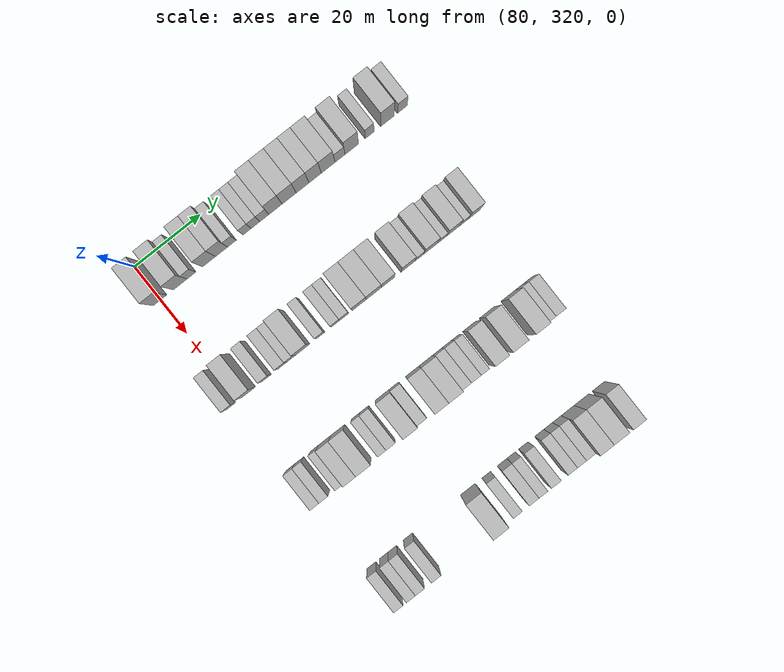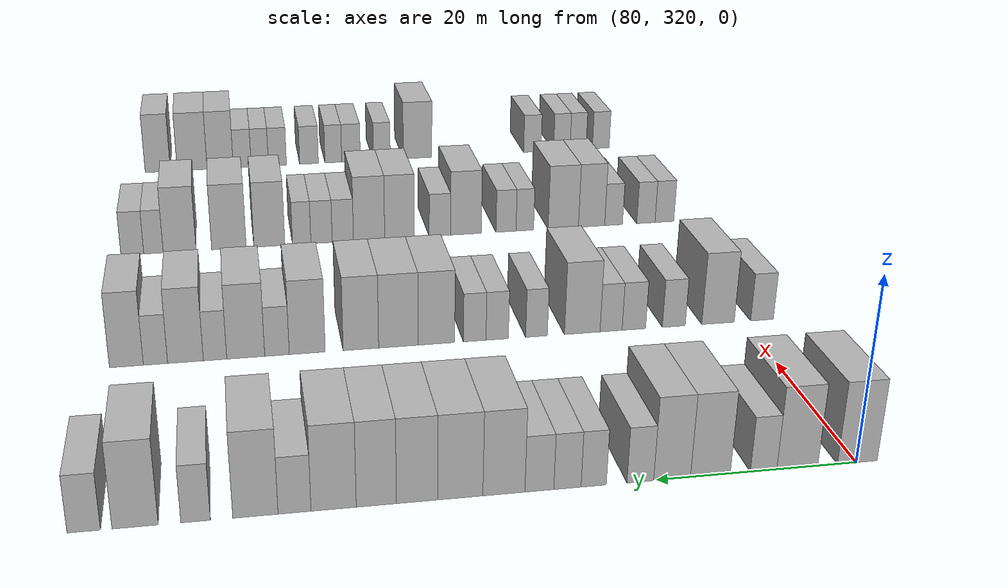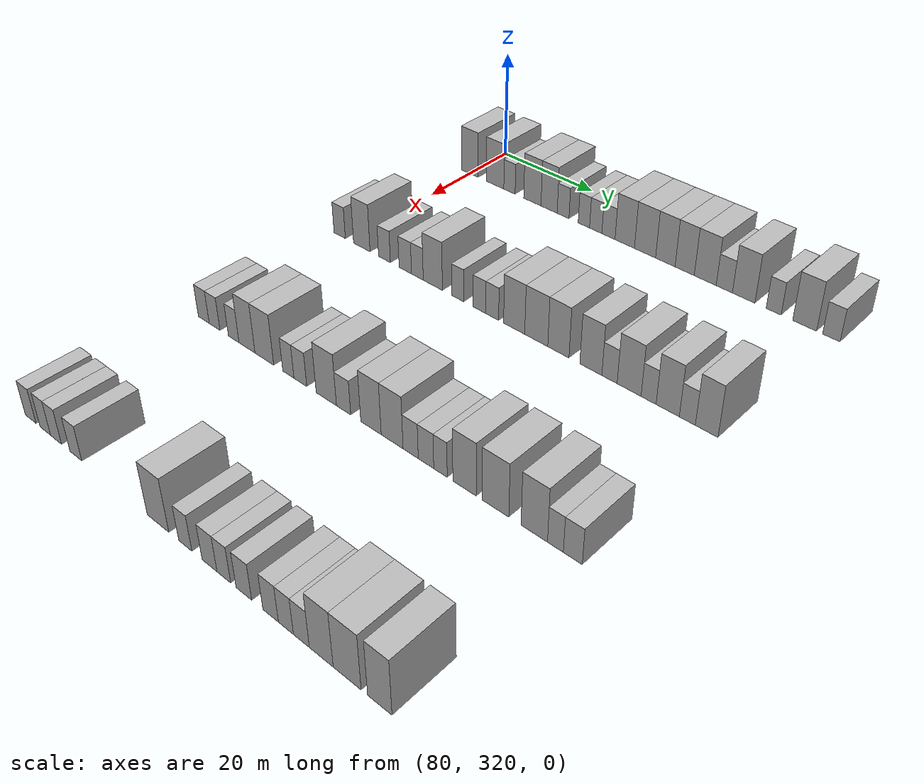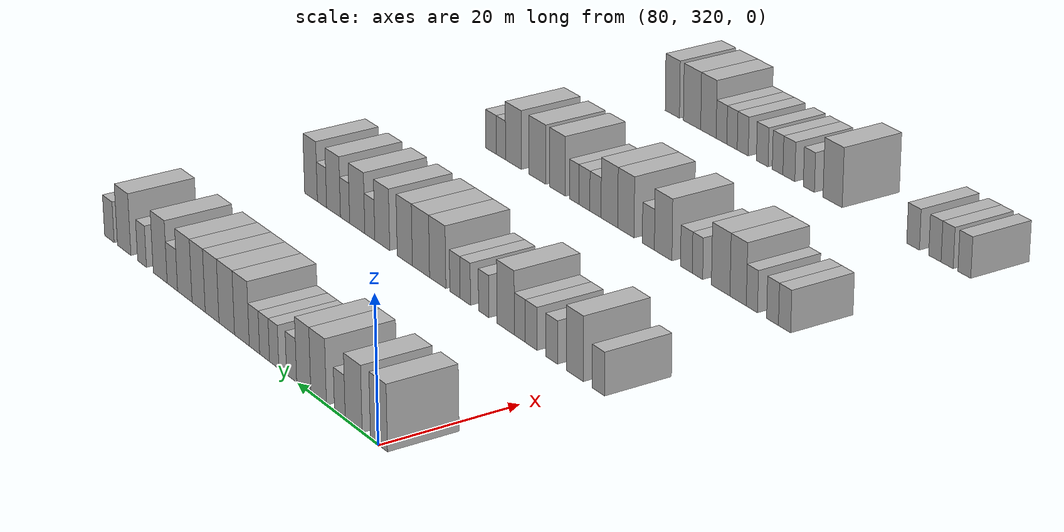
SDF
<sdf version="1.6">
 <world name="default">
  <model name="building_643">
   <static>1</static>
   <pose>85.0000 319.9103 0 0.000000 0.000000 0.000000</pose>
   <link name="link">
    <pose>0 0 4.50 0 0 0</pose>
    <collision name="collision"><geometry><box><size>10.0000 4.0431 9.0000</size></box></geometry></collision>
    <visual name="visual">
     <cast_shadows>0</cast_shadows>
     <geometry><box><size>10.0000 4.0431 9.0000</size></box></geometry>
     <material>
      <script>
       <uri>model://HANNAS_wall/materials/scripts</uri>
       <uri>model://HANNAS_wall/materials/textures</uri>
       <name>vrc/HANNAS_wall</name>
      </script>
     </material>
    </visual>
   </link>
  </model>
  <model name="building_644">
   <static>1</static>
   <pose>85.0000 325.9961 0 0.000000 0.000000 0.000000</pose>
   <link name="link">
    <pose>0 0 4.50 0 0 0</pose>
    <collision name="collision"><geometry><box><size>10.0000 4.1285 9.0000</size></box></geometry></collision>
    <visual name="visual">
     <cast_shadows>0</cast_shadows>
     <geometry><box><size>10.0000 4.1285 9.0000</size></box></geometry>
     <material>
      <script>
       <uri>model://HANNAS_wall/materials/scripts</uri>
       <uri>model://HANNAS_wall/materials/textures</uri>
       <name>vrc/HANNAS_wall</name>
      </script>
     </material>
    </visual>
   </link>
  </model>
  <model name="building_645">
   <static>1</static>
   <pose>85.0000 329.3809 0 0.000000 0.000000 0.000000</pose>
   <link name="link">
    <pose>0 0 3.00 0 0 0</pose>
    <collision name="collision"><geometry><box><size>10.0000 2.6412 6.0000</size></box></geometry></collision>
    <visual name="visual">
     <cast_shadows>0</cast_shadows>
     <geometry><box><size>10.0000 2.6412 6.0000</size></box></geometry>
     <material>
      <script>
       <uri>model://HANNAS_wall/materials/scripts</uri>
       <uri>model://HANNAS_wall/materials/textures</uri>
       <name>vrc/HANNAS_wall</name>
      </script>
     </material>
    </visual>
   </link>
  </model>
  <model name="building_646">
   <static>1</static>
   <pose>85.0000 334.6647 0 0.000000 0.000000 0.000000</pose>
   <link name="link">
    <pose>0 0 4.50 0 0 0</pose>
    <collision name="collision"><geometry><box><size>10.0000 3.9263 9.0000</size></box></geometry></collision>
    <visual name="visual">
     <cast_shadows>0</cast_shadows>
     <geometry><box><size>10.0000 3.9263 9.0000</size></box></geometry>
     <material>
      <script>
       <uri>model://HANNAS_wall/materials/scripts</uri>
       <uri>model://HANNAS_wall/materials/textures</uri>
       <name>vrc/HANNAS_wall</name>
      </script>
     </material>
    </visual>
   </link>
  </model>
  <model name="building_647">
   <static>1</static>
   <pose>85.0000 338.4344 0 0.000000 0.000000 0.000000</pose>
   <link name="link">
    <pose>0 0 4.50 0 0 0</pose>
    <collision name="collision"><geometry><box><size>10.0000 3.6131 9.0000</size></box></geometry></collision>
    <visual name="visual">
     <cast_shadows>0</cast_shadows>
     <geometry><box><size>10.0000 3.6131 9.0000</size></box></geometry>
     <material>
      <script>
       <uri>model://HANNAS_wall/materials/scripts</uri>
       <uri>model://HANNAS_wall/materials/textures</uri>
       <name>vrc/HANNAS_wall</name>
      </script>
     </material>
    </visual>
   </link>
  </model>
  <model name="building_648">
   <static>1</static>
   <pose>85.0000 341.5403 0 0.000000 0.000000 0.000000</pose>
   <link name="link">
    <pose>0 0 3.00 0 0 0</pose>
    <collision name="collision"><geometry><box><size>10.0000 2.5987 6.0000</size></box></geometry></collision>
    <visual name="visual">
     <cast_shadows>0</cast_shadows>
     <geometry><box><size>10.0000 2.5987 6.0000</size></box></geometry>
     <material>
      <script>
       <uri>model://HANNAS_wall/materials/scripts</uri>
       <uri>model://HANNAS_wall/materials/textures</uri>
       <name>vrc/HANNAS_wall</name>
      </script>
     </material>
    </visual>
   </link>
  </model>
  <model name="building_649">
   <static>1</static>
   <pose>85.0000 346.0572 0 0.000000 0.000000 0.000000</pose>
   <link name="link">
    <pose>0 0 3.00 0 0 0</pose>
    <collision name="collision"><geometry><box><size>10.0000 2.4350 6.0000</size></box></geometry></collision>
    <visual name="visual">
     <cast_shadows>0</cast_shadows>
     <geometry><box><size>10.0000 2.4350 6.0000</size></box></geometry>
     <material>
      <script>
       <uri>model://HANNAS_wall/materials/scripts</uri>
       <uri>model://HANNAS_wall/materials/textures</uri>
       <name>vrc/HANNAS_wall</name>
      </script>
     </material>
    </visual>
   </link>
  </model>
  <model name="building_650">
   <static>1</static>
   <pose>85.0000 348.5784 0 0.000000 0.000000 0.000000</pose>
   <link name="link">
    <pose>0 0 3.00 0 0 0</pose>
    <collision name="collision"><geometry><box><size>10.0000 2.6075 6.0000</size></box></geometry></collision>
    <visual name="visual">
     <cast_shadows>0</cast_shadows>
     <geometry><box><size>10.0000 2.6075 6.0000</size></box></geometry>
     <material>
      <script>
       <uri>model://HANNAS_wall/materials/scripts</uri>
       <uri>model://HANNAS_wall/materials/textures</uri>
       <name>vrc/HANNAS_wall</name>
      </script>
     </material>
    </visual>
   </link>
  </model>
  <model name="building_651">
   <static>1</static>
   <pose>85.0000 351.2582 0 0.000000 0.000000 0.000000</pose>
   <link name="link">
    <pose>0 0 3.00 0 0 0</pose>
    <collision name="collision"><geometry><box><size>10.0000 2.7520 6.0000</size></box></geometry></collision>
    <visual name="visual">
     <cast_shadows>0</cast_shadows>
     <geometry><box><size>10.0000 2.7520 6.0000</size></box></geometry>
     <material>
      <script>
       <uri>model://HANNAS_wall/materials/scripts</uri>
       <uri>model://HANNAS_wall/materials/textures</uri>
       <name>vrc/HANNAS_wall</name>
      </script>
     </material>
    </visual>
   </link>
  </model>
  <model name="building_652">
   <static>1</static>
   <pose>85.0000 354.6231 0 0.000000 0.000000 0.000000</pose>
   <link name="link">
    <pose>0 0 4.50 0 0 0</pose>
    <collision name="collision"><geometry><box><size>10.0000 3.9779 9.0000</size></box></geometry></collision>
    <visual name="visual">
     <cast_shadows>0</cast_shadows>
     <geometry><box><size>10.0000 3.9779 9.0000</size></box></geometry>
     <material>
      <script>
       <uri>model://HANNAS_wall/materials/scripts</uri>
       <uri>model://HANNAS_wall/materials/textures</uri>
       <name>vrc/HANNAS_wall</name>
      </script>
     </material>
    </visual>
   </link>
  </model>
  <model name="building_653">
   <static>1</static>
   <pose>85.0000 358.7332 0 0.000000 0.000000 0.000000</pose>
   <link name="link">
    <pose>0 0 4.50 0 0 0</pose>
    <collision name="collision"><geometry><box><size>10.0000 4.2423 9.0000</size></box></geometry></collision>
    <visual name="visual">
     <cast_shadows>0</cast_shadows>
     <geometry><box><size>10.0000 4.2423 9.0000</size></box></geometry>
     <material>
      <script>
       <uri>model://HANNAS_wall/materials/scripts</uri>
       <uri>model://HANNAS_wall/materials/textures</uri>
       <name>vrc/HANNAS_wall</name>
      </script>
     </material>
    </visual>
   </link>
  </model>
  <model name="building_654">
   <static>1</static>
   <pose>85.0000 362.7655 0 0.000000 0.000000 0.000000</pose>
   <link name="link">
    <pose>0 0 4.50 0 0 0</pose>
    <collision name="collision"><geometry><box><size>10.0000 3.8223 9.0000</size></box></geometry></collision>
    <visual name="visual">
     <cast_shadows>0</cast_shadows>
     <geometry><box><size>10.0000 3.8223 9.0000</size></box></geometry>
     <material>
      <script>
       <uri>model://HANNAS_wall/materials/scripts</uri>
       <uri>model://HANNAS_wall/materials/textures</uri>
       <name>vrc/HANNAS_wall</name>
      </script>
     </material>
    </visual>
   </link>
  </model>
  <model name="building_655">
   <static>1</static>
   <pose>85.0000 366.5242 0 0.000000 0.000000 0.000000</pose>
   <link name="link">
    <pose>0 0 4.50 0 0 0</pose>
    <collision name="collision"><geometry><box><size>10.0000 3.6950 9.0000</size></box></geometry></collision>
    <visual name="visual">
     <cast_shadows>0</cast_shadows>
     <geometry><box><size>10.0000 3.6950 9.0000</size></box></geometry>
     <material>
      <script>
       <uri>model://HANNAS_wall/materials/scripts</uri>
       <uri>model://HANNAS_wall/materials/textures</uri>
       <name>vrc/HANNAS_wall</name>
      </script>
     </material>
    </visual>
   </link>
  </model>
  <model name="building_656">
   <static>1</static>
   <pose>85.0000 370.4353 0 0.000000 0.000000 0.000000</pose>
   <link name="link">
    <pose>0 0 4.50 0 0 0</pose>
    <collision name="collision"><geometry><box><size>10.0000 4.1272 9.0000</size></box></geometry></collision>
    <visual name="visual">
     <cast_shadows>0</cast_shadows>
     <geometry><box><size>10.0000 4.1272 9.0000</size></box></geometry>
     <material>
      <script>
       <uri>model://HANNAS_wall/materials/scripts</uri>
       <uri>model://HANNAS_wall/materials/textures</uri>
       <name>vrc/HANNAS_wall</name>
      </script>
     </material>
    </visual>
   </link>
  </model>
  <model name="building_657">
   <static>1</static>
   <pose>85.0000 373.9904 0 0.000000 0.000000 0.000000</pose>
   <link name="link">
    <pose>0 0 3.00 0 0 0</pose>
    <collision name="collision"><geometry><box><size>10.0000 2.9829 6.0000</size></box></geometry></collision>
    <visual name="visual">
     <cast_shadows>0</cast_shadows>
     <geometry><box><size>10.0000 2.9829 6.0000</size></box></geometry>
     <material>
      <script>
       <uri>model://HANNAS_wall/materials/scripts</uri>
       <uri>model://HANNAS_wall/materials/textures</uri>
       <name>vrc/HANNAS_wall</name>
      </script>
     </material>
    </visual>
   </link>
  </model>
  <model name="building_658">
   <static>1</static>
   <pose>85.0000 377.5121 0 0.000000 0.000000 0.000000</pose>
   <link name="link">
    <pose>0 0 4.50 0 0 0</pose>
    <collision name="collision"><geometry><box><size>10.0000 4.0607 9.0000</size></box></geometry></collision>
    <visual name="visual">
     <cast_shadows>0</cast_shadows>
     <geometry><box><size>10.0000 4.0607 9.0000</size></box></geometry>
     <material>
      <script>
       <uri>model://HANNAS_wall/materials/scripts</uri>
       <uri>model://HANNAS_wall/materials/textures</uri>
       <name>vrc/HANNAS_wall</name>
      </script>
     </material>
    </visual>
   </link>
  </model>
  <model name="building_659">
   <static>1</static>
   <pose>85.0000 382.8527 0 0.000000 0.000000 0.000000</pose>
   <link name="link">
    <pose>0 0 3.00 0 0 0</pose>
    <collision name="collision"><geometry><box><size>10.0000 2.6204 6.0000</size></box></geometry></collision>
    <visual name="visual">
     <cast_shadows>0</cast_shadows>
     <geometry><box><size>10.0000 2.6204 6.0000</size></box></geometry>
     <material>
      <script>
       <uri>model://HANNAS_wall/materials/scripts</uri>
       <uri>model://HANNAS_wall/materials/textures</uri>
       <name>vrc/HANNAS_wall</name>
      </script>
     </material>
    </visual>
   </link>
  </model>
  <model name="building_660">
   <static>1</static>
   <pose>85.0000 388.1898 0 0.000000 0.000000 0.000000</pose>
   <link name="link">
    <pose>0 0 4.50 0 0 0</pose>
    <collision name="collision"><geometry><box><size>10.0000 4.0538 9.0000</size></box></geometry></collision>
    <visual name="visual">
     <cast_shadows>0</cast_shadows>
     <geometry><box><size>10.0000 4.0538 9.0000</size></box></geometry>
     <material>
      <script>
       <uri>model://HANNAS_wall/materials/scripts</uri>
       <uri>model://HANNAS_wall/materials/textures</uri>
       <name>vrc/HANNAS_wall</name>
      </script>
     </material>
    </visual>
   </link>
  </model>
  <model name="building_661">
   <static>1</static>
   <pose>85.0000 392.6674 0 0.000000 0.000000 0.000000</pose>
   <link name="link">
    <pose>0 0 3.00 0 0 0</pose>
    <collision name="collision"><geometry><box><size>10.0000 2.9014 6.0000</size></box></geometry></collision>
    <visual name="visual">
     <cast_shadows>0</cast_shadows>
     <geometry><box><size>10.0000 2.9014 6.0000</size></box></geometry>
     <material>
      <script>
       <uri>model://HANNAS_wall/materials/scripts</uri>
       <uri>model://HANNAS_wall/materials/textures</uri>
       <name>vrc/HANNAS_wall</name>
      </script>
     </material>
    </visual>
   </link>
  </model>
  <model name="building_870">
   <static>1</static>
   <pose>115.0000 317.6694 0 0.000000 0.000000 0.000000</pose>
   <link name="link">
    <pose>0 0 3.00 0 0 0</pose>
    <collision name="collision"><geometry><box><size>10.0000 2.7696 6.0000</size></box></geometry></collision>
    <visual name="visual">
     <cast_shadows>0</cast_shadows>
     <geometry><box><size>10.0000 2.7696 6.0000</size></box></geometry>
     <material>
      <script>
       <uri>model://HANNAS_wall/materials/scripts</uri>
       <uri>model://HANNAS_wall/materials/textures</uri>
       <name>vrc/HANNAS_wall</name>
      </script>
     </material>
    </visual>
   </link>
  </model>
  <model name="building_871">
   <static>1</static>
   <pose>115.0000 323.0190 0 0.000000 0.000000 0.000000</pose>
   <link name="link">
    <pose>0 0 4.50 0 0 0</pose>
    <collision name="collision"><geometry><box><size>10.0000 3.9295 9.0000</size></box></geometry></collision>
    <visual name="visual">
     <cast_shadows>0</cast_shadows>
     <geometry><box><size>10.0000 3.9295 9.0000</size></box></geometry>
     <material>
      <script>
       <uri>model://HANNAS_wall/materials/scripts</uri>
       <uri>model://HANNAS_wall/materials/textures</uri>
       <name>vrc/HANNAS_wall</name>
      </script>
     </material>
    </visual>
   </link>
  </model>
  <model name="building_872">
   <static>1</static>
   <pose>115.0000 328.3545 0 0.000000 0.000000 0.000000</pose>
   <link name="link">
    <pose>0 0 3.00 0 0 0</pose>
    <collision name="collision"><geometry><box><size>10.0000 2.7415 6.0000</size></box></geometry></collision>
    <visual name="visual">
     <cast_shadows>0</cast_shadows>
     <geometry><box><size>10.0000 2.7415 6.0000</size></box></geometry>
     <material>
      <script>
       <uri>model://HANNAS_wall/materials/scripts</uri>
       <uri>model://HANNAS_wall/materials/textures</uri>
       <name>vrc/HANNAS_wall</name>
      </script>
     </material>
    </visual>
   </link>
  </model>
  <model name="building_873">
   <static>1</static>
   <pose>115.0000 333.1225 0 0.000000 0.000000 0.000000</pose>
   <link name="link">
    <pose>0 0 3.00 0 0 0</pose>
    <collision name="collision"><geometry><box><size>10.0000 2.7944 6.0000</size></box></geometry></collision>
    <visual name="visual">
     <cast_shadows>0</cast_shadows>
     <geometry><box><size>10.0000 2.7944 6.0000</size></box></geometry>
     <material>
      <script>
       <uri>model://HANNAS_wall/materials/scripts</uri>
       <uri>model://HANNAS_wall/materials/textures</uri>
       <name>vrc/HANNAS_wall</name>
      </script>
     </material>
    </visual>
   </link>
  </model>
  <model name="building_874">
   <static>1</static>
   <pose>115.0000 335.8273 0 0.000000 0.000000 0.000000</pose>
   <link name="link">
    <pose>0 0 3.00 0 0 0</pose>
    <collision name="collision"><geometry><box><size>10.0000 2.6154 6.0000</size></box></geometry></collision>
    <visual name="visual">
     <cast_shadows>0</cast_shadows>
     <geometry><box><size>10.0000 2.6154 6.0000</size></box></geometry>
     <material>
      <script>
       <uri>model://HANNAS_wall/materials/scripts</uri>
       <uri>model://HANNAS_wall/materials/textures</uri>
       <name>vrc/HANNAS_wall</name>
      </script>
     </material>
    </visual>
   </link>
  </model>
  <model name="building_875">
   <static>1</static>
   <pose>115.0000 339.2314 0 0.000000 0.000000 0.000000</pose>
   <link name="link">
    <pose>0 0 4.50 0 0 0</pose>
    <collision name="collision"><geometry><box><size>10.0000 4.1929 9.0000</size></box></geometry></collision>
    <visual name="visual">
     <cast_shadows>0</cast_shadows>
     <geometry><box><size>10.0000 4.1929 9.0000</size></box></geometry>
     <material>
      <script>
       <uri>model://HANNAS_wall/materials/scripts</uri>
       <uri>model://HANNAS_wall/materials/textures</uri>
       <name>vrc/HANNAS_wall</name>
      </script>
     </material>
    </visual>
   </link>
  </model>
  <model name="building_876">
   <static>1</static>
   <pose>115.0000 344.5932 0 0.000000 0.000000 0.000000</pose>
   <link name="link">
    <pose>0 0 3.00 0 0 0</pose>
    <collision name="collision"><geometry><box><size>10.0000 2.5306 6.0000</size></box></geometry></collision>
    <visual name="visual">
     <cast_shadows>0</cast_shadows>
     <geometry><box><size>10.0000 2.5306 6.0000</size></box></geometry>
     <material>
      <script>
       <uri>model://HANNAS_wall/materials/scripts</uri>
       <uri>model://HANNAS_wall/materials/textures</uri>
       <name>vrc/HANNAS_wall</name>
      </script>
     </material>
    </visual>
   </link>
  </model>
  <model name="building_877">
   <static>1</static>
   <pose>115.0000 349.1530 0 0.000000 0.000000 0.000000</pose>
   <link name="link">
    <pose>0 0 3.00 0 0 0</pose>
    <collision name="collision"><geometry><box><size>10.0000 2.5890 6.0000</size></box></geometry></collision>
    <visual name="visual">
     <cast_shadows>0</cast_shadows>
     <geometry><box><size>10.0000 2.5890 6.0000</size></box></geometry>
     <material>
      <script>
       <uri>model://HANNAS_wall/materials/scripts</uri>
       <uri>model://HANNAS_wall/materials/textures</uri>
       <name>vrc/HANNAS_wall</name>
      </script>
     </material>
    </visual>
   </link>
  </model>
  <model name="building_878">
   <static>1</static>
   <pose>115.0000 351.7486 0 0.000000 0.000000 0.000000</pose>
   <link name="link">
    <pose>0 0 3.00 0 0 0</pose>
    <collision name="collision"><geometry><box><size>10.0000 2.6023 6.0000</size></box></geometry></collision>
    <visual name="visual">
     <cast_shadows>0</cast_shadows>
     <geometry><box><size>10.0000 2.6023 6.0000</size></box></geometry>
     <material>
      <script>
       <uri>model://HANNAS_wall/materials/scripts</uri>
       <uri>model://HANNAS_wall/materials/textures</uri>
       <name>vrc/HANNAS_wall</name>
      </script>
     </material>
    </visual>
   </link>
  </model>
  <model name="building_879">
   <static>1</static>
   <pose>115.0000 356.1386 0 0.000000 0.000000 0.000000</pose>
   <link name="link">
    <pose>0 0 4.50 0 0 0</pose>
    <collision name="collision"><geometry><box><size>10.0000 4.1776 9.0000</size></box></geometry></collision>
    <visual name="visual">
     <cast_shadows>0</cast_shadows>
     <geometry><box><size>10.0000 4.1776 9.0000</size></box></geometry>
     <material>
      <script>
       <uri>model://HANNAS_wall/materials/scripts</uri>
       <uri>model://HANNAS_wall/materials/textures</uri>
       <name>vrc/HANNAS_wall</name>
      </script>
     </material>
    </visual>
   </link>
  </model>
  <model name="building_880">
   <static>1</static>
   <pose>115.0000 360.4554 0 0.000000 0.000000 0.000000</pose>
   <link name="link">
    <pose>0 0 4.50 0 0 0</pose>
    <collision name="collision"><geometry><box><size>10.0000 4.4561 9.0000</size></box></geometry></collision>
    <visual name="visual">
     <cast_shadows>0</cast_shadows>
     <geometry><box><size>10.0000 4.4561 9.0000</size></box></geometry>
     <material>
      <script>
       <uri>model://HANNAS_wall/materials/scripts</uri>
       <uri>model://HANNAS_wall/materials/textures</uri>
       <name>vrc/HANNAS_wall</name>
      </script>
     </material>
    </visual>
   </link>
  </model>
  <model name="building_881">
   <static>1</static>
   <pose>115.0000 364.6772 0 0.000000 0.000000 0.000000</pose>
   <link name="link">
    <pose>0 0 4.50 0 0 0</pose>
    <collision name="collision"><geometry><box><size>10.0000 3.9874 9.0000</size></box></geometry></collision>
    <visual name="visual">
     <cast_shadows>0</cast_shadows>
     <geometry><box><size>10.0000 3.9874 9.0000</size></box></geometry>
     <material>
      <script>
       <uri>model://HANNAS_wall/materials/scripts</uri>
       <uri>model://HANNAS_wall/materials/textures</uri>
       <name>vrc/HANNAS_wall</name>
      </script>
     </material>
    </visual>
   </link>
  </model>
  <model name="building_882">
   <static>1</static>
   <pose>115.0000 370.6687 0 0.000000 0.000000 0.000000</pose>
   <link name="link">
    <pose>0 0 4.50 0 0 0</pose>
    <collision name="collision"><geometry><box><size>10.0000 3.9956 9.0000</size></box></geometry></collision>
    <visual name="visual">
     <cast_shadows>0</cast_shadows>
     <geometry><box><size>10.0000 3.9956 9.0000</size></box></geometry>
     <material>
      <script>
       <uri>model://HANNAS_wall/materials/scripts</uri>
       <uri>model://HANNAS_wall/materials/textures</uri>
       <name>vrc/HANNAS_wall</name>
      </script>
     </material>
    </visual>
   </link>
  </model>
  <model name="building_883">
   <static>1</static>
   <pose>115.0000 374.0204 0 0.000000 0.000000 0.000000</pose>
   <link name="link">
    <pose>0 0 3.00 0 0 0</pose>
    <collision name="collision"><geometry><box><size>10.0000 2.7079 6.0000</size></box></geometry></collision>
    <visual name="visual">
     <cast_shadows>0</cast_shadows>
     <geometry><box><size>10.0000 2.7079 6.0000</size></box></geometry>
     <material>
      <script>
       <uri>model://HANNAS_wall/materials/scripts</uri>
       <uri>model://HANNAS_wall/materials/textures</uri>
       <name>vrc/HANNAS_wall</name>
      </script>
     </material>
    </visual>
   </link>
  </model>
  <model name="building_884">
   <static>1</static>
   <pose>115.0000 377.4581 0 0.000000 0.000000 0.000000</pose>
   <link name="link">
    <pose>0 0 4.50 0 0 0</pose>
    <collision name="collision"><geometry><box><size>10.0000 4.1674 9.0000</size></box></geometry></collision>
    <visual name="visual">
     <cast_shadows>0</cast_shadows>
     <geometry><box><size>10.0000 4.1674 9.0000</size></box></geometry>
     <material>
      <script>
       <uri>model://HANNAS_wall/materials/scripts</uri>
       <uri>model://HANNAS_wall/materials/textures</uri>
       <name>vrc/HANNAS_wall</name>
      </script>
     </material>
    </visual>
   </link>
  </model>
  <model name="building_885">
   <static>1</static>
   <pose>115.0000 380.8173 0 0.000000 0.000000 0.000000</pose>
   <link name="link">
    <pose>0 0 3.00 0 0 0</pose>
    <collision name="collision"><geometry><box><size>10.0000 2.5510 6.0000</size></box></geometry></collision>
    <visual name="visual">
     <cast_shadows>0</cast_shadows>
     <geometry><box><size>10.0000 2.5510 6.0000</size></box></geometry>
     <material>
      <script>
       <uri>model://HANNAS_wall/materials/scripts</uri>
       <uri>model://HANNAS_wall/materials/textures</uri>
       <name>vrc/HANNAS_wall</name>
      </script>
     </material>
    </visual>
   </link>
  </model>
  <model name="building_886">
   <static>1</static>
   <pose>115.0000 384.0284 0 0.000000 0.000000 0.000000</pose>
   <link name="link">
    <pose>0 0 4.50 0 0 0</pose>
    <collision name="collision"><geometry><box><size>10.0000 3.8713 9.0000</size></box></geometry></collision>
    <visual name="visual">
     <cast_shadows>0</cast_shadows>
     <geometry><box><size>10.0000 3.8713 9.0000</size></box></geometry>
     <material>
      <script>
       <uri>model://HANNAS_wall/materials/scripts</uri>
       <uri>model://HANNAS_wall/materials/textures</uri>
       <name>vrc/HANNAS_wall</name>
      </script>
     </material>
    </visual>
   </link>
  </model>
  <model name="building_887">
   <static>1</static>
   <pose>115.0000 387.2712 0 0.000000 0.000000 0.000000</pose>
   <link name="link">
    <pose>0 0 3.00 0 0 0</pose>
    <collision name="collision"><geometry><box><size>10.0000 2.6143 6.0000</size></box></geometry></collision>
    <visual name="visual">
     <cast_shadows>0</cast_shadows>
     <geometry><box><size>10.0000 2.6143 6.0000</size></box></geometry>
     <material>
      <script>
       <uri>model://HANNAS_wall/materials/scripts</uri>
       <uri>model://HANNAS_wall/materials/textures</uri>
       <name>vrc/HANNAS_wall</name>
      </script>
     </material>
    </visual>
   </link>
  </model>
  <model name="building_888">
   <static>1</static>
   <pose>115.0000 390.3950 0 0.000000 0.000000 0.000000</pose>
   <link name="link">
    <pose>0 0 4.50 0 0 0</pose>
    <collision name="collision"><geometry><box><size>10.0000 3.6334 9.0000</size></box></geometry></collision>
    <visual name="visual">
     <cast_shadows>0</cast_shadows>
     <geometry><box><size>10.0000 3.6334 9.0000</size></box></geometry>
     <material>
      <script>
       <uri>model://HANNAS_wall/materials/scripts</uri>
       <uri>model://HANNAS_wall/materials/textures</uri>
       <name>vrc/HANNAS_wall</name>
      </script>
     </material>
    </visual>
   </link>
  </model>
  <model name="building_1098">
   <static>1</static>
   <pose>145.0000 319.7716 0 0.000000 0.000000 0.000000</pose>
   <link name="link">
    <pose>0 0 3.00 0 0 0</pose>
    <collision name="collision"><geometry><box><size>10.0000 2.6483 6.0000</size></box></geometry></collision>
    <visual name="visual">
     <cast_shadows>0</cast_shadows>
     <geometry><box><size>10.0000 2.6483 6.0000</size></box></geometry>
     <material>
      <script>
       <uri>model://HANNAS_wall/materials/scripts</uri>
       <uri>model://HANNAS_wall/materials/textures</uri>
       <name>vrc/HANNAS_wall</name>
      </script>
     </material>
    </visual>
   </link>
  </model>
  <model name="building_1099">
   <static>1</static>
   <pose>145.0000 322.3885 0 0.000000 0.000000 0.000000</pose>
   <link name="link">
    <pose>0 0 3.00 0 0 0</pose>
    <collision name="collision"><geometry><box><size>10.0000 2.5855 6.0000</size></box></geometry></collision>
    <visual name="visual">
     <cast_shadows>0</cast_shadows>
     <geometry><box><size>10.0000 2.5855 6.0000</size></box></geometry>
     <material>
      <script>
       <uri>model://HANNAS_wall/materials/scripts</uri>
       <uri>model://HANNAS_wall/materials/textures</uri>
       <name>vrc/HANNAS_wall</name>
      </script>
     </material>
    </visual>
   </link>
  </model>
  <model name="building_1100">
   <static>1</static>
   <pose>145.0000 326.9279 0 0.000000 0.000000 0.000000</pose>
   <link name="link">
    <pose>0 0 3.00 0 0 0</pose>
    <collision name="collision"><geometry><box><size>10.0000 2.4931 6.0000</size></box></geometry></collision>
    <visual name="visual">
     <cast_shadows>0</cast_shadows>
     <geometry><box><size>10.0000 2.4931 6.0000</size></box></geometry>
     <material>
      <script>
       <uri>model://HANNAS_wall/materials/scripts</uri>
       <uri>model://HANNAS_wall/materials/textures</uri>
       <name>vrc/HANNAS_wall</name>
      </script>
     </material>
    </visual>
   </link>
  </model>
  <model name="building_1101">
   <static>1</static>
   <pose>145.0000 330.0084 0 0.000000 0.000000 0.000000</pose>
   <link name="link">
    <pose>0 0 4.50 0 0 0</pose>
    <collision name="collision"><geometry><box><size>10.0000 3.6679 9.0000</size></box></geometry></collision>
    <visual name="visual">
     <cast_shadows>0</cast_shadows>
     <geometry><box><size>10.0000 3.6679 9.0000</size></box></geometry>
     <material>
      <script>
       <uri>model://HANNAS_wall/materials/scripts</uri>
       <uri>model://HANNAS_wall/materials/textures</uri>
       <name>vrc/HANNAS_wall</name>
      </script>
     </material>
    </visual>
   </link>
  </model>
  <model name="building_1102">
   <static>1</static>
   <pose>145.0000 333.9476 0 0.000000 0.000000 0.000000</pose>
   <link name="link">
    <pose>0 0 4.50 0 0 0</pose>
    <collision name="collision"><geometry><box><size>10.0000 4.2105 9.0000</size></box></geometry></collision>
    <visual name="visual">
     <cast_shadows>0</cast_shadows>
     <geometry><box><size>10.0000 4.2105 9.0000</size></box></geometry>
     <material>
      <script>
       <uri>model://HANNAS_wall/materials/scripts</uri>
       <uri>model://HANNAS_wall/materials/textures</uri>
       <name>vrc/HANNAS_wall</name>
      </script>
     </material>
    </visual>
   </link>
  </model>
  <model name="building_1103">
   <static>1</static>
   <pose>145.0000 339.2618 0 0.000000 0.000000 0.000000</pose>
   <link name="link">
    <pose>0 0 3.00 0 0 0</pose>
    <collision name="collision"><geometry><box><size>10.0000 2.4177 6.0000</size></box></geometry></collision>
    <visual name="visual">
     <cast_shadows>0</cast_shadows>
     <geometry><box><size>10.0000 2.4177 6.0000</size></box></geometry>
     <material>
      <script>
       <uri>model://HANNAS_wall/materials/scripts</uri>
       <uri>model://HANNAS_wall/materials/textures</uri>
       <name>vrc/HANNAS_wall</name>
      </script>
     </material>
    </visual>
   </link>
  </model>
  <model name="building_1104">
   <static>1</static>
   <pose>145.0000 341.8411 0 0.000000 0.000000 0.000000</pose>
   <link name="link">
    <pose>0 0 3.00 0 0 0</pose>
    <collision name="collision"><geometry><box><size>10.0000 2.7410 6.0000</size></box></geometry></collision>
    <visual name="visual">
     <cast_shadows>0</cast_shadows>
     <geometry><box><size>10.0000 2.7410 6.0000</size></box></geometry>
     <material>
      <script>
       <uri>model://HANNAS_wall/materials/scripts</uri>
       <uri>model://HANNAS_wall/materials/textures</uri>
       <name>vrc/HANNAS_wall</name>
      </script>
     </material>
    </visual>
   </link>
  </model>
  <model name="building_1105">
   <static>1</static>
   <pose>145.0000 347.2988 0 0.000000 0.000000 0.000000</pose>
   <link name="link">
    <pose>0 0 4.50 0 0 0</pose>
    <collision name="collision"><geometry><box><size>10.0000 4.1743 9.0000</size></box></geometry></collision>
    <visual name="visual">
     <cast_shadows>0</cast_shadows>
     <geometry><box><size>10.0000 4.1743 9.0000</size></box></geometry>
     <material>
      <script>
       <uri>model://HANNAS_wall/materials/scripts</uri>
       <uri>model://HANNAS_wall/materials/textures</uri>
       <name>vrc/HANNAS_wall</name>
      </script>
     </material>
    </visual>
   </link>
  </model>
  <model name="building_1106">
   <static>1</static>
   <pose>145.0000 350.8282 0 0.000000 0.000000 0.000000</pose>
   <link name="link">
    <pose>0 0 3.00 0 0 0</pose>
    <collision name="collision"><geometry><box><size>10.0000 2.8845 6.0000</size></box></geometry></collision>
    <visual name="visual">
     <cast_shadows>0</cast_shadows>
     <geometry><box><size>10.0000 2.8845 6.0000</size></box></geometry>
     <material>
      <script>
       <uri>model://HANNAS_wall/materials/scripts</uri>
       <uri>model://HANNAS_wall/materials/textures</uri>
       <name>vrc/HANNAS_wall</name>
      </script>
     </material>
    </visual>
   </link>
  </model>
  <model name="building_1107">
   <static>1</static>
   <pose>145.0000 356.2612 0 0.000000 0.000000 0.000000</pose>
   <link name="link">
    <pose>0 0 4.50 0 0 0</pose>
    <collision name="collision"><geometry><box><size>10.0000 3.9815 9.0000</size></box></geometry></collision>
    <visual name="visual">
     <cast_shadows>0</cast_shadows>
     <geometry><box><size>10.0000 3.9815 9.0000</size></box></geometry>
     <material>
      <script>
       <uri>model://HANNAS_wall/materials/scripts</uri>
       <uri>model://HANNAS_wall/materials/textures</uri>
       <name>vrc/HANNAS_wall</name>
      </script>
     </material>
    </visual>
   </link>
  </model>
  <model name="building_1108">
   <static>1</static>
   <pose>145.0000 360.3249 0 0.000000 0.000000 0.000000</pose>
   <link name="link">
    <pose>0 0 4.50 0 0 0</pose>
    <collision name="collision"><geometry><box><size>10.0000 4.1458 9.0000</size></box></geometry></collision>
    <visual name="visual">
     <cast_shadows>0</cast_shadows>
     <geometry><box><size>10.0000 4.1458 9.0000</size></box></geometry>
     <material>
      <script>
       <uri>model://HANNAS_wall/materials/scripts</uri>
       <uri>model://HANNAS_wall/materials/textures</uri>
       <name>vrc/HANNAS_wall</name>
      </script>
     </material>
    </visual>
   </link>
  </model>
  <model name="building_1109">
   <static>1</static>
   <pose>145.0000 363.8033 0 0.000000 0.000000 0.000000</pose>
   <link name="link">
    <pose>0 0 3.00 0 0 0</pose>
    <collision name="collision"><geometry><box><size>10.0000 2.8111 6.0000</size></box></geometry></collision>
    <visual name="visual">
     <cast_shadows>0</cast_shadows>
     <geometry><box><size>10.0000 2.8111 6.0000</size></box></geometry>
     <material>
      <script>
       <uri>model://HANNAS_wall/materials/scripts</uri>
       <uri>model://HANNAS_wall/materials/textures</uri>
       <name>vrc/HANNAS_wall</name>
      </script>
     </material>
    </visual>
   </link>
  </model>
  <model name="building_1110">
   <static>1</static>
   <pose>145.0000 366.6174 0 0.000000 0.000000 0.000000</pose>
   <link name="link">
    <pose>0 0 3.00 0 0 0</pose>
    <collision name="collision"><geometry><box><size>10.0000 2.8170 6.0000</size></box></geometry></collision>
    <visual name="visual">
     <cast_shadows>0</cast_shadows>
     <geometry><box><size>10.0000 2.8170 6.0000</size></box></geometry>
     <material>
      <script>
       <uri>model://HANNAS_wall/materials/scripts</uri>
       <uri>model://HANNAS_wall/materials/textures</uri>
       <name>vrc/HANNAS_wall</name>
      </script>
     </material>
    </visual>
   </link>
  </model>
  <model name="building_1111">
   <static>1</static>
   <pose>145.0000 369.2288 0 0.000000 0.000000 0.000000</pose>
   <link name="link">
    <pose>0 0 3.00 0 0 0</pose>
    <collision name="collision"><geometry><box><size>10.0000 2.4059 6.0000</size></box></geometry></collision>
    <visual name="visual">
     <cast_shadows>0</cast_shadows>
     <geometry><box><size>10.0000 2.4059 6.0000</size></box></geometry>
     <material>
      <script>
       <uri>model://HANNAS_wall/materials/scripts</uri>
       <uri>model://HANNAS_wall/materials/textures</uri>
       <name>vrc/HANNAS_wall</name>
      </script>
     </material>
    </visual>
   </link>
  </model>
  <model name="building_1112">
   <static>1</static>
   <pose>145.0000 373.4511 0 0.000000 0.000000 0.000000</pose>
   <link name="link">
    <pose>0 0 4.50 0 0 0</pose>
    <collision name="collision"><geometry><box><size>10.0000 4.0386 9.0000</size></box></geometry></collision>
    <visual name="visual">
     <cast_shadows>0</cast_shadows>
     <geometry><box><size>10.0000 4.0386 9.0000</size></box></geometry>
     <material>
      <script>
       <uri>model://HANNAS_wall/materials/scripts</uri>
       <uri>model://HANNAS_wall/materials/textures</uri>
       <name>vrc/HANNAS_wall</name>
      </script>
     </material>
    </visual>
   </link>
  </model>
  <model name="building_1113">
   <static>1</static>
   <pose>145.0000 378.7050 0 0.000000 0.000000 0.000000</pose>
   <link name="link">
    <pose>0 0 4.50 0 0 0</pose>
    <collision name="collision"><geometry><box><size>10.0000 4.4693 9.0000</size></box></geometry></collision>
    <visual name="visual">
     <cast_shadows>0</cast_shadows>
     <geometry><box><size>10.0000 4.4693 9.0000</size></box></geometry>
     <material>
      <script>
       <uri>model://HANNAS_wall/materials/scripts</uri>
       <uri>model://HANNAS_wall/materials/textures</uri>
       <name>vrc/HANNAS_wall</name>
      </script>
     </material>
    </visual>
   </link>
  </model>
  <model name="building_1114">
   <static>1</static>
   <pose>145.0000 385.0499 0 0.000000 0.000000 0.000000</pose>
   <link name="link">
    <pose>0 0 4.50 0 0 0</pose>
    <collision name="collision"><geometry><box><size>10.0000 4.2204 9.0000</size></box></geometry></collision>
    <visual name="visual">
     <cast_shadows>0</cast_shadows>
     <geometry><box><size>10.0000 4.2204 9.0000</size></box></geometry>
     <material>
      <script>
       <uri>model://HANNAS_wall/materials/scripts</uri>
       <uri>model://HANNAS_wall/materials/textures</uri>
       <name>vrc/HANNAS_wall</name>
      </script>
     </material>
    </visual>
   </link>
  </model>
  <model name="building_1115">
   <static>1</static>
   <pose>145.0000 388.3962 0 0.000000 0.000000 0.000000</pose>
   <link name="link">
    <pose>0 0 3.00 0 0 0</pose>
    <collision name="collision"><geometry><box><size>10.0000 2.4722 6.0000</size></box></geometry></collision>
    <visual name="visual">
     <cast_shadows>0</cast_shadows>
     <geometry><box><size>10.0000 2.4722 6.0000</size></box></geometry>
     <material>
      <script>
       <uri>model://HANNAS_wall/materials/scripts</uri>
       <uri>model://HANNAS_wall/materials/textures</uri>
       <name>vrc/HANNAS_wall</name>
      </script>
     </material>
    </visual>
   </link>
  </model>
  <model name="building_1116">
   <static>1</static>
   <pose>145.0000 391.0825 0 0.000000 0.000000 0.000000</pose>
   <link name="link">
    <pose>0 0 3.00 0 0 0</pose>
    <collision name="collision"><geometry><box><size>10.0000 2.9004 6.0000</size></box></geometry></collision>
    <visual name="visual">
     <cast_shadows>0</cast_shadows>
     <geometry><box><size>10.0000 2.9004 6.0000</size></box></geometry>
     <material>
      <script>
       <uri>model://HANNAS_wall/materials/scripts</uri>
       <uri>model://HANNAS_wall/materials/textures</uri>
       <name>vrc/HANNAS_wall</name>
      </script>
     </material>
    </visual>
   </link>
  </model>
  <model name="building_1336">
   <static>1</static>
   <pose>175.0000 320.4124 0 0.000000 0.000000 0.000000</pose>
   <link name="link">
    <pose>0 0 3.00 0 0 0</pose>
    <collision name="collision"><geometry><box><size>10.0000 2.7024 6.0000</size></box></geometry></collision>
    <visual name="visual">
     <cast_shadows>0</cast_shadows>
     <geometry><box><size>10.0000 2.7024 6.0000</size></box></geometry>
     <material>
      <script>
       <uri>model://HANNAS_wall/materials/scripts</uri>
       <uri>model://HANNAS_wall/materials/textures</uri>
       <name>vrc/HANNAS_wall</name>
      </script>
     </material>
    </visual>
   </link>
  </model>
  <model name="building_1337">
   <static>1</static>
   <pose>175.0000 324.0519 0 0.000000 0.000000 0.000000</pose>
   <link name="link">
    <pose>0 0 3.00 0 0 0</pose>
    <collision name="collision"><geometry><box><size>10.0000 2.5767 6.0000</size></box></geometry></collision>
    <visual name="visual">
     <cast_shadows>0</cast_shadows>
     <geometry><box><size>10.0000 2.5767 6.0000</size></box></geometry>
     <material>
      <script>
       <uri>model://HANNAS_wall/materials/scripts</uri>
       <uri>model://HANNAS_wall/materials/textures</uri>
       <name>vrc/HANNAS_wall</name>
      </script>
     </material>
    </visual>
   </link>
  </model>
  <model name="building_1338">
   <static>1</static>
   <pose>175.0000 326.6636 0 0.000000 0.000000 0.000000</pose>
   <link name="link">
    <pose>0 0 3.00 0 0 0</pose>
    <collision name="collision"><geometry><box><size>10.0000 2.6468 6.0000</size></box></geometry></collision>
    <visual name="visual">
     <cast_shadows>0</cast_shadows>
     <geometry><box><size>10.0000 2.6468 6.0000</size></box></geometry>
     <material>
      <script>
       <uri>model://HANNAS_wall/materials/scripts</uri>
       <uri>model://HANNAS_wall/materials/textures</uri>
       <name>vrc/HANNAS_wall</name>
      </script>
     </material>
    </visual>
   </link>
  </model>
  <model name="building_1339">
   <static>1</static>
   <pose>175.0000 331.3730 0 0.000000 0.000000 0.000000</pose>
   <link name="link">
    <pose>0 0 3.00 0 0 0</pose>
    <collision name="collision"><geometry><box><size>10.0000 2.7719 6.0000</size></box></geometry></collision>
    <visual name="visual">
     <cast_shadows>0</cast_shadows>
     <geometry><box><size>10.0000 2.7719 6.0000</size></box></geometry>
     <material>
      <script>
       <uri>model://HANNAS_wall/materials/scripts</uri>
       <uri>model://HANNAS_wall/materials/textures</uri>
       <name>vrc/HANNAS_wall</name>
      </script>
     </material>
    </visual>
   </link>
  </model>
  <model name="building_1340">
   <static>1</static>
   <pose>175.0000 349.4127 0 0.000000 0.000000 0.000000</pose>
   <link name="link">
    <pose>0 0 4.50 0 0 0</pose>
    <collision name="collision"><geometry><box><size>10.0000 4.4358 9.0000</size></box></geometry></collision>
    <visual name="visual">
     <cast_shadows>0</cast_shadows>
     <geometry><box><size>10.0000 4.4358 9.0000</size></box></geometry>
     <material>
      <script>
       <uri>model://HANNAS_wall/materials/scripts</uri>
       <uri>model://HANNAS_wall/materials/textures</uri>
       <name>vrc/HANNAS_wall</name>
      </script>
     </material>
    </visual>
   </link>
  </model>
  <model name="building_1341">
   <static>1</static>
   <pose>175.0000 354.9328 0 0.000000 0.000000 0.000000</pose>
   <link name="link">
    <pose>0 0 3.00 0 0 0</pose>
    <collision name="collision"><geometry><box><size>10.0000 2.6045 6.0000</size></box></geometry></collision>
    <visual name="visual">
     <cast_shadows>0</cast_shadows>
     <geometry><box><size>10.0000 2.6045 6.0000</size></box></geometry>
     <material>
      <script>
       <uri>model://HANNAS_wall/materials/scripts</uri>
       <uri>model://HANNAS_wall/materials/textures</uri>
       <name>vrc/HANNAS_wall</name>
      </script>
     </material>
    </visual>
   </link>
  </model>
  <model name="building_1342">
   <static>1</static>
   <pose>175.0000 359.6594 0 0.000000 0.000000 0.000000</pose>
   <link name="link">
    <pose>0 0 3.00 0 0 0</pose>
    <collision name="collision"><geometry><box><size>10.0000 2.8486 6.0000</size></box></geometry></collision>
    <visual name="visual">
     <cast_shadows>0</cast_shadows>
     <geometry><box><size>10.0000 2.8486 6.0000</size></box></geometry>
     <material>
      <script>
       <uri>model://HANNAS_wall/materials/scripts</uri>
       <uri>model://HANNAS_wall/materials/textures</uri>
       <name>vrc/HANNAS_wall</name>
      </script>
     </material>
    </visual>
   </link>
  </model>
  <model name="building_1343">
   <static>1</static>
   <pose>175.0000 362.3615 0 0.000000 0.000000 0.000000</pose>
   <link name="link">
    <pose>0 0 3.00 0 0 0</pose>
    <collision name="collision"><geometry><box><size>10.0000 2.5556 6.0000</size></box></geometry></collision>
    <visual name="visual">
     <cast_shadows>0</cast_shadows>
     <geometry><box><size>10.0000 2.5556 6.0000</size></box></geometry>
     <material>
      <script>
       <uri>model://HANNAS_wall/materials/scripts</uri>
       <uri>model://HANNAS_wall/materials/textures</uri>
       <name>vrc/HANNAS_wall</name>
      </script>
     </material>
    </visual>
   </link>
  </model>
  <model name="building_1344">
   <static>1</static>
   <pose>175.0000 366.0594 0 0.000000 0.000000 0.000000</pose>
   <link name="link">
    <pose>0 0 3.00 0 0 0</pose>
    <collision name="collision"><geometry><box><size>10.0000 2.8403 6.0000</size></box></geometry></collision>
    <visual name="visual">
     <cast_shadows>0</cast_shadows>
     <geometry><box><size>10.0000 2.8403 6.0000</size></box></geometry>
     <material>
      <script>
       <uri>model://HANNAS_wall/materials/scripts</uri>
       <uri>model://HANNAS_wall/materials/textures</uri>
       <name>vrc/HANNAS_wall</name>
      </script>
     </material>
    </visual>
   </link>
  </model>
  <model name="building_1345">
   <static>1</static>
   <pose>175.0000 370.8428 0 0.000000 0.000000 0.000000</pose>
   <link name="link">
    <pose>0 0 3.00 0 0 0</pose>
    <collision name="collision"><geometry><box><size>10.0000 2.7264 6.0000</size></box></geometry></collision>
    <visual name="visual">
     <cast_shadows>0</cast_shadows>
     <geometry><box><size>10.0000 2.7264 6.0000</size></box></geometry>
     <material>
      <script>
       <uri>model://HANNAS_wall/materials/scripts</uri>
       <uri>model://HANNAS_wall/materials/textures</uri>
       <name>vrc/HANNAS_wall</name>
      </script>
     </material>
    </visual>
   </link>
  </model>
  <model name="building_1346">
   <static>1</static>
   <pose>175.0000 373.4994 0 0.000000 0.000000 0.000000</pose>
   <link name="link">
    <pose>0 0 3.00 0 0 0</pose>
    <collision name="collision"><geometry><box><size>10.0000 2.5868 6.0000</size></box></geometry></collision>
    <visual name="visual">
     <cast_shadows>0</cast_shadows>
     <geometry><box><size>10.0000 2.5868 6.0000</size></box></geometry>
     <material>
      <script>
       <uri>model://HANNAS_wall/materials/scripts</uri>
       <uri>model://HANNAS_wall/materials/textures</uri>
       <name>vrc/HANNAS_wall</name>
      </script>
     </material>
    </visual>
   </link>
  </model>
  <model name="building_1347">
   <static>1</static>
   <pose>175.0000 376.1301 0 0.000000 0.000000 0.000000</pose>
   <link name="link">
    <pose>0 0 3.00 0 0 0</pose>
    <collision name="collision"><geometry><box><size>10.0000 2.6747 6.0000</size></box></geometry></collision>
    <visual name="visual">
     <cast_shadows>0</cast_shadows>
     <geometry><box><size>10.0000 2.6747 6.0000</size></box></geometry>
     <material>
      <script>
       <uri>model://HANNAS_wall/materials/scripts</uri>
       <uri>model://HANNAS_wall/materials/textures</uri>
       <name>vrc/HANNAS_wall</name>
      </script>
     </material>
    </visual>
   </link>
  </model>
  <model name="building_1348">
   <static>1</static>
   <pose>175.0000 379.4214 0 0.000000 0.000000 0.000000</pose>
   <link name="link">
    <pose>0 0 4.50 0 0 0</pose>
    <collision name="collision"><geometry><box><size>10.0000 3.9079 9.0000</size></box></geometry></collision>
    <visual name="visual">
     <cast_shadows>0</cast_shadows>
     <geometry><box><size>10.0000 3.9079 9.0000</size></box></geometry>
     <material>
      <script>
       <uri>model://HANNAS_wall/materials/scripts</uri>
       <uri>model://HANNAS_wall/materials/textures</uri>
       <name>vrc/HANNAS_wall</name>
      </script>
     </material>
    </visual>
   </link>
  </model>
  <model name="building_1349">
   <static>1</static>
   <pose>175.0000 383.5915 0 0.000000 0.000000 0.000000</pose>
   <link name="link">
    <pose>0 0 4.50 0 0 0</pose>
    <collision name="collision"><geometry><box><size>10.0000 4.4322 9.0000</size></box></geometry></collision>
    <visual name="visual">
     <cast_shadows>0</cast_shadows>
     <geometry><box><size>10.0000 4.4322 9.0000</size></box></geometry>
     <material>
      <script>
       <uri>model://HANNAS_wall/materials/scripts</uri>
       <uri>model://HANNAS_wall/materials/textures</uri>
       <name>vrc/HANNAS_wall</name>
      </script>
     </material>
    </visual>
   </link>
  </model>
  <model name="building_1350">
   <static>1</static>
   <pose>175.0000 388.6641 0 0.000000 0.000000 0.000000</pose>
   <link name="link">
    <pose>0 0 4.50 0 0 0</pose>
    <collision name="collision"><geometry><box><size>10.0000 3.7131 9.0000</size></box></geometry></collision>
    <visual name="visual">
     <cast_shadows>0</cast_shadows>
     <geometry><box><size>10.0000 3.7131 9.0000</size></box></geometry>
     <material>
      <script>
       <uri>model://HANNAS_wall/materials/scripts</uri>
       <uri>model://HANNAS_wall/materials/textures</uri>
       <name>vrc/HANNAS_wall</name>
      </script>
     </material>
    </visual>
   </link>
  </model>
 </world>
</sdf>
